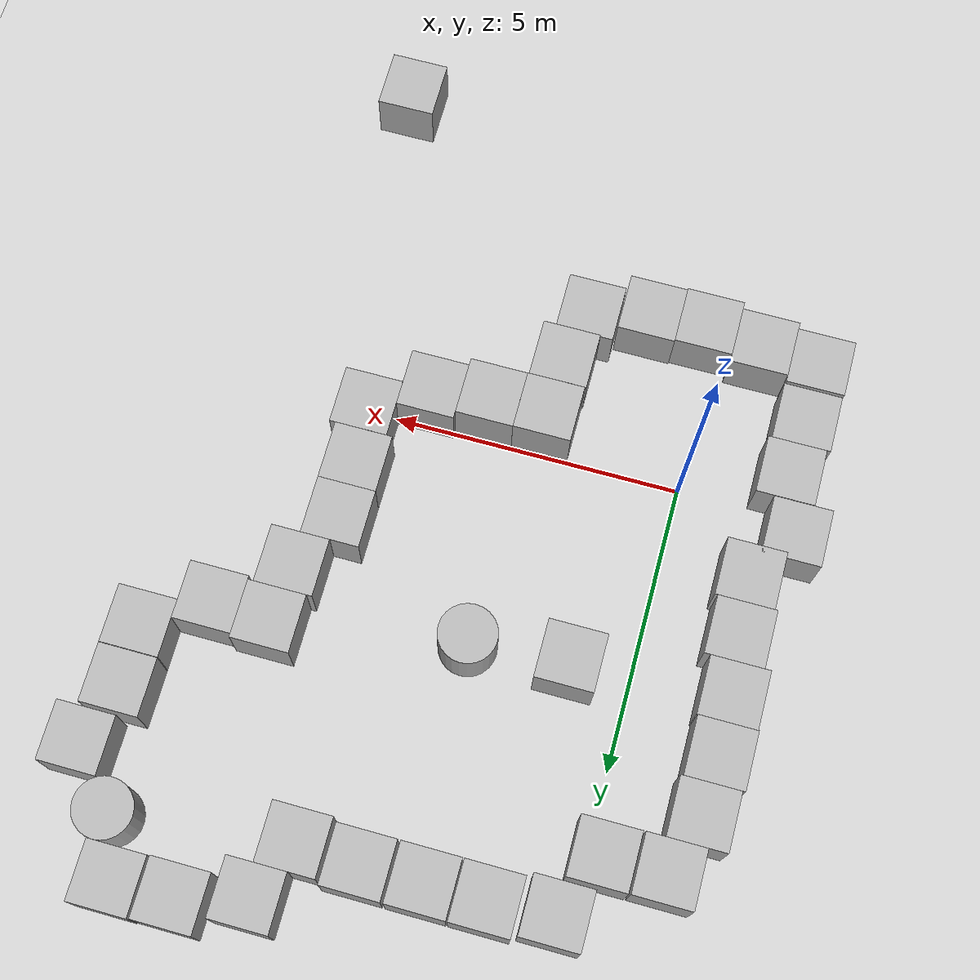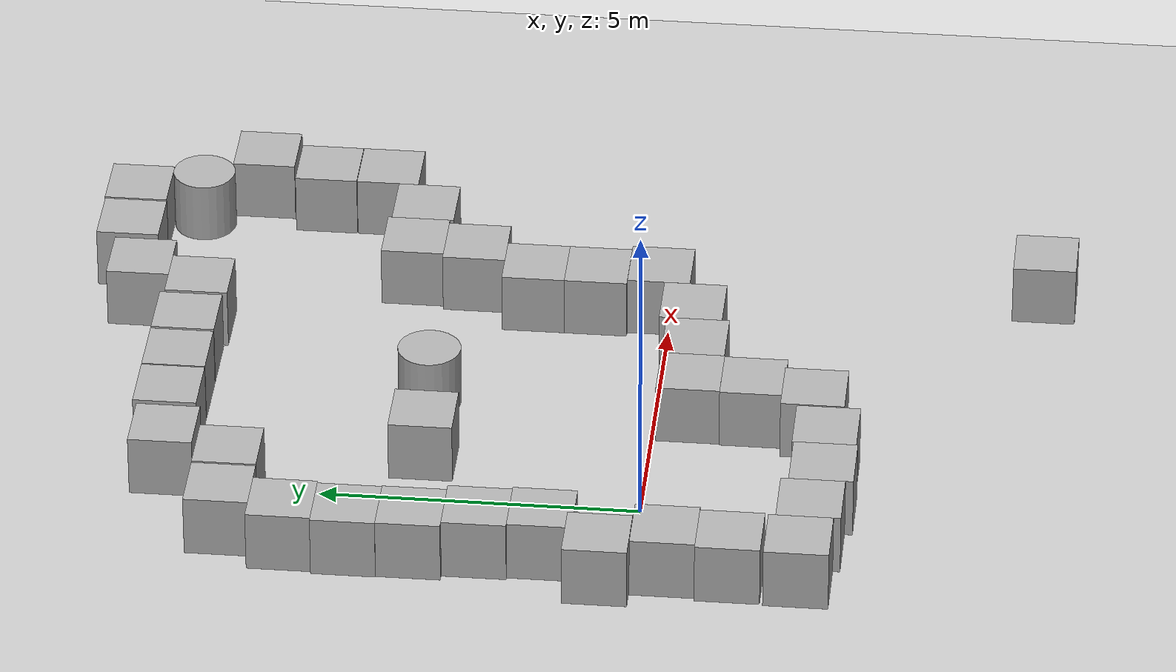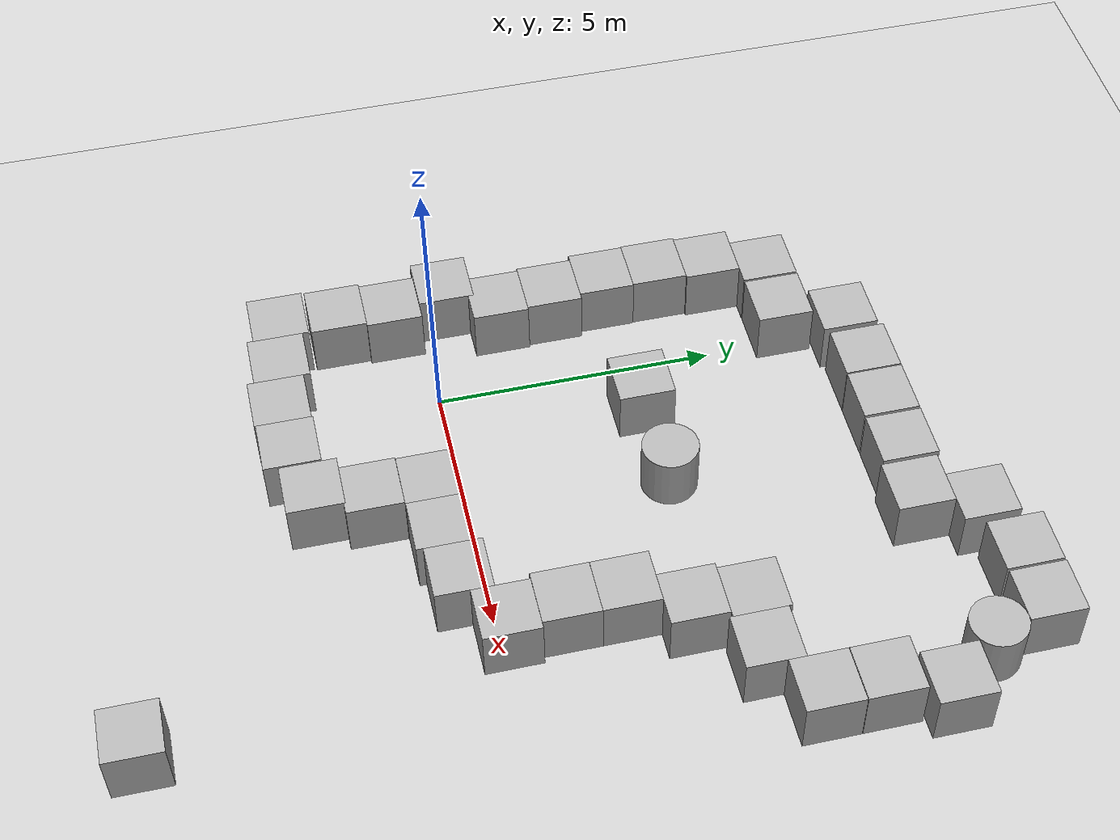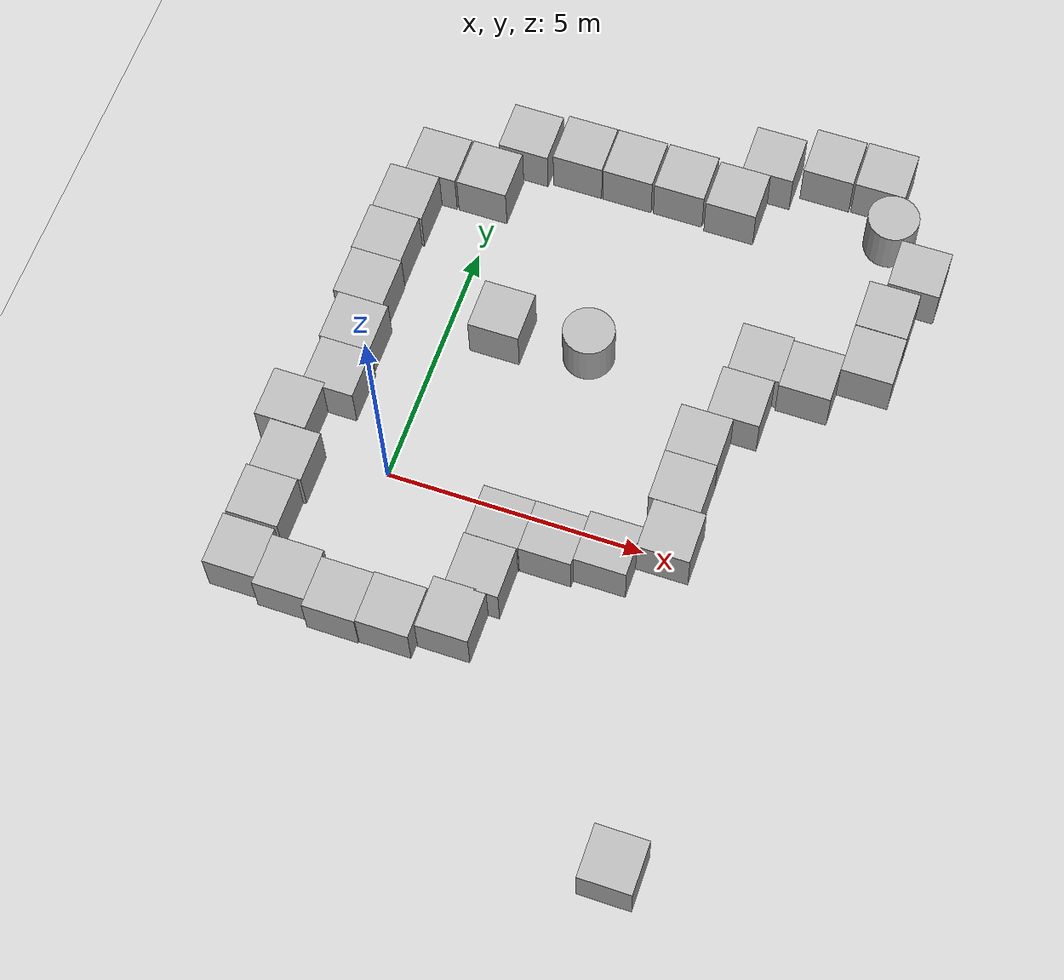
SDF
<sdf version='1.10'>
  <world name='empty'>
    <physics name='8ms' type='ode'>
      <max_step_size>0.0080000000000000002</max_step_size>
      <real_time_factor>1</real_time_factor>
      <real_time_update_rate>125</real_time_update_rate>
    </physics>
    <plugin name='gz::sim::systems::Physics' filename='gz-sim-physics-system'/>
    <plugin name='gz::sim::systems::UserCommands' filename='gz-sim-user-commands-system'/>
    <plugin name='gz::sim::systems::SceneBroadcaster' filename='gz-sim-scene-broadcaster-system'/>
    <plugin name='gz::sim::systems::Contact' filename='gz-sim-contact-system'/>
    <plugin name='gz::sim::systems::Sensors' filename='gz-sim-sensors-system'>
      <render_engine>ogre2</render_engine>
    </plugin>
    <plugin name='gz::sim::systems::Imu' filename='gz-sim-imu-system'/>
    <gravity>0 0 -9.8000000000000007</gravity>
    <magnetic_field>5.5644999999999998e-06 2.2875799999999999e-05 -4.2388400000000002e-05</magnetic_field>
    <atmosphere type='adiabatic'/>
    <scene>
      <ambient>0.400000006 0.400000006 0.400000006 1</ambient>
      <background>0.699999988 0.699999988 0.699999988 1</background>
      <shadows>true</shadows>
    </scene>
    <model name='ground_plane'>
      <static>true</static>
      <link name='link'>
        <collision name='collision'>
          <geometry>
            <plane>
              <normal>0 0 1</normal>
              <size>100 100</size>
            </plane>
          </geometry>
          <surface>
            <friction>
              <ode/>
            </friction>
            <bounce/>
            <contact/>
          </surface>
        </collision>
        <visual name='visual'>
          <geometry>
            <plane>
              <normal>0 0 1</normal>
              <size>100 100</size>
            </plane>
          </geometry>
          <material>
            <ambient>0.800000012 0.800000012 0.800000012 1</ambient>
            <diffuse>0.800000012 0.800000012 0.800000012 1</diffuse>
            <specular>0.800000012 0.800000012 0.800000012 1</specular>
          </material>
        </visual>
        <pose>0 0 0 0 0 0</pose>
        <inertial>
          <pose>0 0 0 0 0 0</pose>
          <mass>1</mass>
          <inertia>
            <ixx>1</ixx>
            <ixy>0</ixy>
            <ixz>0</ixz>
            <iyy>1</iyy>
            <iyz>0</iyz>
            <izz>1</izz>
          </inertia>
        </inertial>
        <enable_wind>false</enable_wind>
      </link>
      <pose>0 0 0 0 0 0</pose>
      <self_collide>false</self_collide>
    </model>
    <model name='box'>
      <pose>6.3773749437070606 -5.9406750922173917 0.49999996926033768 2.8665218322931826e-19 -5.1636786517095065e-20 -3.6289452764098855e-20</pose>
      <link name='box_link'>
        <inertial>
          <inertia>
            <ixx>0.16666</ixx>
            <ixy>0</ixy>
            <ixz>0</ixz>
            <iyy>0.16666</iyy>
            <iyz>0</iyz>
            <izz>0.16666</izz>
          </inertia>
          <mass>1</mass>
          <pose>0 0 0 0 0 0</pose>
        </inertial>
        <collision name='box_collision'>
          <geometry>
            <box>
              <size>1 1 1</size>
            </box>
          </geometry>
          <surface>
            <friction>
              <ode/>
            </friction>
            <bounce/>
            <contact/>
          </surface>
        </collision>
        <visual name='box_visual'>
          <geometry>
            <box>
              <size>1 1 1</size>
            </box>
          </geometry>
          <material>
            <ambient>0.300000012 0.300000012 0.300000012 1</ambient>
            <diffuse>0.699999988 0.699999988 0.699999988 1</diffuse>
            <specular>1 1 1 1</specular>
          </material>
        </visual>
        <pose>0 0 0 0 0 0</pose>
        <enable_wind>false</enable_wind>
      </link>
      <static>false</static>
      <self_collide>false</self_collide>
    </model>
    <model name='cylinder'>
      <pose>7.5005292656625748 7.7814179568781778 0.49999990219167934 2.5278244739576513e-07 3.7491130759547338e-10 -1.6894241753965159e-05</pose>
      <link name='cylinder_link'>
        <inertial>
          <inertia>
            <ixx>0.14580000000000001</ixx>
            <ixy>0</ixy>
            <ixz>0</ixz>
            <iyy>0.14580000000000001</iyy>
            <iyz>0</iyz>
            <izz>0.125</izz>
          </inertia>
          <mass>1</mass>
          <pose>0 0 0 0 0 0</pose>
        </inertial>
        <collision name='cylinder_collision'>
          <geometry>
            <cylinder>
              <radius>0.5</radius>
              <length>1</length>
            </cylinder>
          </geometry>
          <surface>
            <friction>
              <ode/>
            </friction>
            <bounce/>
            <contact/>
          </surface>
        </collision>
        <visual name='cylinder_visual'>
          <geometry>
            <cylinder>
              <radius>0.5</radius>
              <length>1</length>
            </cylinder>
          </geometry>
          <material>
            <ambient>0.300000012 0.300000012 0.300000012 1</ambient>
            <diffuse>0.699999988 0.699999988 0.699999988 1</diffuse>
            <specular>1 1 1 1</specular>
          </material>
        </visual>
        <pose>0 0 0 0 0 0</pose>
        <enable_wind>false</enable_wind>
      </link>
      <static>false</static>
      <self_collide>false</self_collide>
    </model>
    <model name='box_0'>
      <pose>1.0430474018532028 3.4817915682843621 0.49999997528531953 2.2913833041953367e-19 2.8784837707162187e-19 9.346766322121268e-22</pose>
      <link name='box_link'>
        <inertial>
          <inertia>
            <ixx>0.16666</ixx>
            <ixy>0</ixy>
            <ixz>0</ixz>
            <iyy>0.16666</iyy>
            <iyz>0</iyz>
            <izz>0.16666</izz>
          </inertia>
          <mass>1</mass>
          <pose>0 0 0 0 0 0</pose>
        </inertial>
        <collision name='box_collision'>
          <geometry>
            <box>
              <size>1 1 1</size>
            </box>
          </geometry>
          <surface>
            <friction>
              <ode/>
            </friction>
            <bounce/>
            <contact/>
          </surface>
        </collision>
        <visual name='box_visual'>
          <geometry>
            <box>
              <size>1 1 1</size>
            </box>
          </geometry>
          <material>
            <ambient>0.300000012 0.300000012 0.300000012 1</ambient>
            <diffuse>0.699999988 0.699999988 0.699999988 1</diffuse>
            <specular>1 1 1 1</specular>
          </material>
        </visual>
        <pose>0 0 0 0 0 0</pose>
        <enable_wind>false</enable_wind>
      </link>
      <static>false</static>
      <self_collide>false</self_collide>
    </model>
    <model name='cylinder_0'>
      <pose>2.7417203900830494 3.576889176520949 0.49999901795715013 1.6373759667242954e-17 2.7624969666176829e-17 -2.6216101068153678e-18</pose>
      <link name='cylinder_link'>
        <inertial>
          <inertia>
            <ixx>0.14580000000000001</ixx>
            <ixy>0</ixy>
            <ixz>0</ixz>
            <iyy>0.14580000000000001</iyy>
            <iyz>0</iyz>
            <izz>0.125</izz>
          </inertia>
          <mass>1</mass>
          <pose>0 0 0 0 0 0</pose>
        </inertial>
        <collision name='cylinder_collision'>
          <geometry>
            <cylinder>
              <radius>0.5</radius>
              <length>1</length>
            </cylinder>
          </geometry>
          <surface>
            <friction>
              <ode/>
            </friction>
            <bounce/>
            <contact/>
          </surface>
        </collision>
        <visual name='cylinder_visual'>
          <geometry>
            <cylinder>
              <radius>0.5</radius>
              <length>1</length>
            </cylinder>
          </geometry>
          <material>
            <ambient>0.300000012 0.300000012 0.300000012 1</ambient>
            <diffuse>0.699999988 0.699999988 0.699999988 1</diffuse>
            <specular>1 1 1 1</specular>
          </material>
        </visual>
        <pose>0 0 0 0 0 0</pose>
        <enable_wind>false</enable_wind>
      </link>
      <static>false</static>
      <self_collide>false</self_collide>
    </model>
    <model name='box_1'>
      <pose>4.4833926855953257 7.4484383812082928 0.49999937278003809 1.8572606510288822e-07 -9.5741442698591624e-13 -7.6370134980979074e-05</pose>
      <link name='box_link'>
        <inertial>
          <inertia>
            <ixx>0.16666</ixx>
            <ixy>0</ixy>
            <ixz>0</ixz>
            <iyy>0.16666</iyy>
            <iyz>0</iyz>
            <izz>0.16666</izz>
          </inertia>
          <mass>1</mass>
          <pose>0 0 0 0 0 0</pose>
        </inertial>
        <collision name='box_collision'>
          <geometry>
            <box>
              <size>1 1 1</size>
            </box>
          </geometry>
          <surface>
            <friction>
              <ode/>
            </friction>
            <bounce/>
            <contact/>
          </surface>
        </collision>
        <visual name='box_visual'>
          <geometry>
            <box>
              <size>1 1 1</size>
            </box>
          </geometry>
          <material>
            <ambient>0.300000012 0.300000012 0.300000012 1</ambient>
            <diffuse>0.699999988 0.699999988 0.699999988 1</diffuse>
            <specular>1 1 1 1</specular>
          </material>
        </visual>
        <pose>0 0 0 0 0 0</pose>
        <enable_wind>false</enable_wind>
      </link>
      <static>false</static>
      <self_collide>false</self_collide>
    </model>
    <model name='box_2'>
      <pose>3.4238177645888692 7.5168907660943542 0.49999998137115731 2.7336579265331904e-19 1.8921354330507597e-19 9.3646175939547248e-22</pose>
      <link name='box_link'>
        <inertial>
          <inertia>
            <ixx>0.16666</ixx>
            <ixy>0</ixy>
            <ixz>0</ixz>
            <iyy>0.16666</iyy>
            <iyz>0</iyz>
            <izz>0.16666</izz>
          </inertia>
          <mass>1</mass>
          <pose>0 0 0 0 0 0</pose>
        </inertial>
        <collision name='box_collision'>
          <geometry>
            <box>
              <size>1 1 1</size>
            </box>
          </geometry>
          <surface>
            <friction>
              <ode/>
            </friction>
            <bounce/>
            <contact/>
          </surface>
        </collision>
        <visual name='box_visual'>
          <geometry>
            <box>
              <size>1 1 1</size>
            </box>
          </geometry>
          <material>
            <ambient>0.300000012 0.300000012 0.300000012 1</ambient>
            <diffuse>0.699999988 0.699999988 0.699999988 1</diffuse>
            <specular>1 1 1 1</specular>
          </material>
        </visual>
        <pose>0 0 0 0 0 0</pose>
        <enable_wind>false</enable_wind>
      </link>
      <static>false</static>
      <self_collide>false</self_collide>
    </model>
    <model name='box_3'>
      <pose>2.3767502703831345 7.5180406976623519 0.49999998137115731 2.7336579265331904e-19 1.8921354330507597e-19 9.3646175939547248e-22</pose>
      <link name='box_link'>
        <inertial>
          <inertia>
            <ixx>0.16666</ixx>
            <ixy>0</ixy>
            <ixz>0</ixz>
            <iyy>0.16666</iyy>
            <iyz>0</iyz>
            <izz>0.16666</izz>
          </inertia>
          <mass>1</mass>
          <pose>0 0 0 0 0 0</pose>
        </inertial>
        <collision name='box_collision'>
          <geometry>
            <box>
              <size>1 1 1</size>
            </box>
          </geometry>
          <surface>
            <friction>
              <ode/>
            </friction>
            <bounce/>
            <contact/>
          </surface>
        </collision>
        <visual name='box_visual'>
          <geometry>
            <box>
              <size>1 1 1</size>
            </box>
          </geometry>
          <material>
            <ambient>0.300000012 0.300000012 0.300000012 1</ambient>
            <diffuse>0.699999988 0.699999988 0.699999988 1</diffuse>
            <specular>1 1 1 1</specular>
          </material>
        </visual>
        <pose>0 0 0 0 0 0</pose>
        <enable_wind>false</enable_wind>
      </link>
      <static>false</static>
      <self_collide>false</self_collide>
    </model>
    <model name='box_4'>
      <pose>1.3513132767212035 7.5187497214373344 0.49999998137115731 2.7336579265331904e-19 1.8921354330507597e-19 9.3646175939547248e-22</pose>
      <link name='box_link'>
        <inertial>
          <inertia>
            <ixx>0.16666</ixx>
            <ixy>0</ixy>
            <ixz>0</ixz>
            <iyy>0.16666</iyy>
            <iyz>0</iyz>
            <izz>0.16666</izz>
          </inertia>
          <mass>1</mass>
          <pose>0 0 0 0 0 0</pose>
        </inertial>
        <collision name='box_collision'>
          <geometry>
            <box>
              <size>1 1 1</size>
            </box>
          </geometry>
          <surface>
            <friction>
              <ode/>
            </friction>
            <bounce/>
            <contact/>
          </surface>
        </collision>
        <visual name='box_visual'>
          <geometry>
            <box>
              <size>1 1 1</size>
            </box>
          </geometry>
          <material>
            <ambient>0.300000012 0.300000012 0.300000012 1</ambient>
            <diffuse>0.699999988 0.699999988 0.699999988 1</diffuse>
            <specular>1 1 1 1</specular>
          </material>
        </visual>
        <pose>0 0 0 0 0 0</pose>
        <enable_wind>false</enable_wind>
      </link>
      <static>false</static>
      <self_collide>false</self_collide>
    </model>
    <model name='box_5'>
      <pose>0.2595693908451544 7.442628290390835 0.49999998137115731 2.7336579265331904e-19 1.8921354330507597e-19 9.3646175939547248e-22</pose>
      <link name='box_link'>
        <inertial>
          <inertia>
            <ixx>0.16666</ixx>
            <ixy>0</ixy>
            <ixz>0</ixz>
            <iyy>0.16666</iyy>
            <iyz>0</iyz>
            <izz>0.16666</izz>
          </inertia>
          <mass>1</mass>
          <pose>0 0 0 0 0 0</pose>
        </inertial>
        <collision name='box_collision'>
          <geometry>
            <box>
              <size>1 1 1</size>
            </box>
          </geometry>
          <surface>
            <friction>
              <ode/>
            </friction>
            <bounce/>
            <contact/>
          </surface>
        </collision>
        <visual name='box_visual'>
          <geometry>
            <box>
              <size>1 1 1</size>
            </box>
          </geometry>
          <material>
            <ambient>0.300000012 0.300000012 0.300000012 1</ambient>
            <diffuse>0.699999988 0.699999988 0.699999988 1</diffuse>
            <specular>1 1 1 1</specular>
          </material>
        </visual>
        <pose>0 0 0 0 0 0</pose>
        <enable_wind>false</enable_wind>
      </link>
      <static>false</static>
      <self_collide>false</self_collide>
    </model>
    <model name='box_6'>
      <pose>-0.22659054454594241 6.3769606004100545 0.49999998137115731 2.7336579265331904e-19 1.8921354330507597e-19 9.3646175939547248e-22</pose>
      <link name='box_link'>
        <inertial>
          <inertia>
            <ixx>0.16666</ixx>
            <ixy>0</ixy>
            <ixz>0</ixz>
            <iyy>0.16666</iyy>
            <iyz>0</iyz>
            <izz>0.16666</izz>
          </inertia>
          <mass>1</mass>
          <pose>0 0 0 0 0 0</pose>
        </inertial>
        <collision name='box_collision'>
          <geometry>
            <box>
              <size>1 1 1</size>
            </box>
          </geometry>
          <surface>
            <friction>
              <ode/>
            </friction>
            <bounce/>
            <contact/>
          </surface>
        </collision>
        <visual name='box_visual'>
          <geometry>
            <box>
              <size>1 1 1</size>
            </box>
          </geometry>
          <material>
            <ambient>0.300000012 0.300000012 0.300000012 1</ambient>
            <diffuse>0.699999988 0.699999988 0.699999988 1</diffuse>
            <specular>1 1 1 1</specular>
          </material>
        </visual>
        <pose>0 0 0 0 0 0</pose>
        <enable_wind>false</enable_wind>
      </link>
      <static>false</static>
      <self_collide>false</self_collide>
    </model>
    <model name='box_7'>
      <pose>-1.2637693627617159 6.3733455751440351 0.49999937279728751 -2.1518937535131832e-07 -4.3858936904578097e-11 1.779973294999159e-05</pose>
      <link name='box_link'>
        <inertial>
          <inertia>
            <ixx>0.16666</ixx>
            <ixy>0</ixy>
            <ixz>0</ixz>
            <iyy>0.16666</iyy>
            <iyz>0</iyz>
            <izz>0.16666</izz>
          </inertia>
          <mass>1</mass>
          <pose>0 0 0 0 0 0</pose>
        </inertial>
        <collision name='box_collision'>
          <geometry>
            <box>
              <size>1 1 1</size>
            </box>
          </geometry>
          <surface>
            <friction>
              <ode/>
            </friction>
            <bounce/>
            <contact/>
          </surface>
        </collision>
        <visual name='box_visual'>
          <geometry>
            <box>
              <size>1 1 1</size>
            </box>
          </geometry>
          <material>
            <ambient>0.300000012 0.300000012 0.300000012 1</ambient>
            <diffuse>0.699999988 0.699999988 0.699999988 1</diffuse>
            <specular>1 1 1 1</specular>
          </material>
        </visual>
        <pose>0 0 0 0 0 0</pose>
        <enable_wind>false</enable_wind>
      </link>
      <static>false</static>
      <self_collide>false</self_collide>
    </model>
    <model name='box_8'>
      <pose>-1.581335850228339 5.3733342423249617 0.49999937278536494 -1.8272280092104608e-07 -2.3293887573020073e-11 2.882887889608092e-05</pose>
      <link name='box_link'>
        <inertial>
          <inertia>
            <ixx>0.16666</ixx>
            <ixy>0</ixy>
            <ixz>0</ixz>
            <iyy>0.16666</iyy>
            <iyz>0</iyz>
            <izz>0.16666</izz>
          </inertia>
          <mass>1</mass>
          <pose>0 0 0 0 0 0</pose>
        </inertial>
        <collision name='box_collision'>
          <geometry>
            <box>
              <size>1 1 1</size>
            </box>
          </geometry>
          <surface>
            <friction>
              <ode/>
            </friction>
            <bounce/>
            <contact/>
          </surface>
        </collision>
        <visual name='box_visual'>
          <geometry>
            <box>
              <size>1 1 1</size>
            </box>
          </geometry>
          <material>
            <ambient>0.300000012 0.300000012 0.300000012 1</ambient>
            <diffuse>0.699999988 0.699999988 0.699999988 1</diffuse>
            <specular>1 1 1 1</specular>
          </material>
        </visual>
        <pose>0 0 0 0 0 0</pose>
        <enable_wind>false</enable_wind>
      </link>
      <static>false</static>
      <self_collide>false</self_collide>
    </model>
    <model name='box_9'>
      <pose>-1.6281585538445364 4.3733322112827722 0.49999937273038703 -1.3381233710799989e-07 9.2431203518653903e-11 3.2586835964982394e-05</pose>
      <link name='box_link'>
        <inertial>
          <inertia>
            <ixx>0.16666</ixx>
            <ixy>0</ixy>
            <ixz>0</ixz>
            <iyy>0.16666</iyy>
            <iyz>0</iyz>
            <izz>0.16666</izz>
          </inertia>
          <mass>1</mass>
          <pose>0 0 0 0 0 0</pose>
        </inertial>
        <collision name='box_collision'>
          <geometry>
            <box>
              <size>1 1 1</size>
            </box>
          </geometry>
          <surface>
            <friction>
              <ode/>
            </friction>
            <bounce/>
            <contact/>
          </surface>
        </collision>
        <visual name='box_visual'>
          <geometry>
            <box>
              <size>1 1 1</size>
            </box>
          </geometry>
          <material>
            <ambient>0.300000012 0.300000012 0.300000012 1</ambient>
            <diffuse>0.699999988 0.699999988 0.699999988 1</diffuse>
            <specular>1 1 1 1</specular>
          </material>
        </visual>
        <pose>0 0 0 0 0 0</pose>
        <enable_wind>false</enable_wind>
      </link>
      <static>false</static>
      <self_collide>false</self_collide>
    </model>
    <model name='box_10'>
      <pose>-1.6122754045928223 3.3733318750467598 0.49999937278305051 -1.0254461767118475e-07 9.7009441382297796e-11 3.5687525636992251e-05</pose>
      <link name='box_link'>
        <inertial>
          <inertia>
            <ixx>0.16666</ixx>
            <ixy>0</ixy>
            <ixz>0</ixz>
            <iyy>0.16666</iyy>
            <iyz>0</iyz>
            <izz>0.16666</izz>
          </inertia>
          <mass>1</mass>
          <pose>0 0 0 0 0 0</pose>
        </inertial>
        <collision name='box_collision'>
          <geometry>
            <box>
              <size>1 1 1</size>
            </box>
          </geometry>
          <surface>
            <friction>
              <ode/>
            </friction>
            <bounce/>
            <contact/>
          </surface>
        </collision>
        <visual name='box_visual'>
          <geometry>
            <box>
              <size>1 1 1</size>
            </box>
          </geometry>
          <material>
            <ambient>0.300000012 0.300000012 0.300000012 1</ambient>
            <diffuse>0.699999988 0.699999988 0.699999988 1</diffuse>
            <specular>1 1 1 1</specular>
          </material>
        </visual>
        <pose>0 0 0 0 0 0</pose>
        <enable_wind>false</enable_wind>
      </link>
      <static>false</static>
      <self_collide>false</self_collide>
    </model>
    <model name='box_11'>
      <pose>-1.5047529750453783 2.3733303133598733 0.49999937278130746 -3.1347026649870656e-07 -1.7490406412583848e-11 5.4585471311020275e-05</pose>
      <link name='box_link'>
        <inertial>
          <inertia>
            <ixx>0.16666</ixx>
            <ixy>0</ixy>
            <ixz>0</ixz>
            <iyy>0.16666</iyy>
            <iyz>0</iyz>
            <izz>0.16666</izz>
          </inertia>
          <mass>1</mass>
          <pose>0 0 0 0 0 0</pose>
        </inertial>
        <collision name='box_collision'>
          <geometry>
            <box>
              <size>1 1 1</size>
            </box>
          </geometry>
          <surface>
            <friction>
              <ode/>
            </friction>
            <bounce/>
            <contact/>
          </surface>
        </collision>
        <visual name='box_visual'>
          <geometry>
            <box>
              <size>1 1 1</size>
            </box>
          </geometry>
          <material>
            <ambient>0.300000012 0.300000012 0.300000012 1</ambient>
            <diffuse>0.699999988 0.699999988 0.699999988 1</diffuse>
            <specular>1 1 1 1</specular>
          </material>
        </visual>
        <pose>0 0 0 0 0 0</pose>
        <enable_wind>false</enable_wind>
      </link>
      <static>false</static>
      <self_collide>false</self_collide>
    </model>
    <model name='box_12'>
      <pose>-1.4574565727493658 1.3733338473249042 0.49999937279274631 -3.2013860664636198e-07 5.9374708597867071e-11 5.4150938705318095e-05</pose>
      <link name='box_link'>
        <inertial>
          <inertia>
            <ixx>0.16666</ixx>
            <ixy>0</ixy>
            <ixz>0</ixz>
            <iyy>0.16666</iyy>
            <iyz>0</iyz>
            <izz>0.16666</izz>
          </inertia>
          <mass>1</mass>
          <pose>0 0 0 0 0 0</pose>
        </inertial>
        <collision name='box_collision'>
          <geometry>
            <box>
              <size>1 1 1</size>
            </box>
          </geometry>
          <surface>
            <friction>
              <ode/>
            </friction>
            <bounce/>
            <contact/>
          </surface>
        </collision>
        <visual name='box_visual'>
          <geometry>
            <box>
              <size>1 1 1</size>
            </box>
          </geometry>
          <material>
            <ambient>0.300000012 0.300000012 0.300000012 1</ambient>
            <diffuse>0.699999988 0.699999988 0.699999988 1</diffuse>
            <specular>1 1 1 1</specular>
          </material>
        </visual>
        <pose>0 0 0 0 0 0</pose>
        <enable_wind>false</enable_wind>
      </link>
      <static>false</static>
      <self_collide>false</self_collide>
    </model>
    <model name='box_16'>
      <pose>2.4583882926030403 -0.56432178909055009 0.49999937278072243 -4.6422205507455976e-07 1.2433715624791574e-11 -0.00063314917677342549</pose>
      <link name='box_link'>
        <inertial>
          <inertia>
            <ixx>0.16666</ixx>
            <ixy>0</ixy>
            <ixz>0</ixz>
            <iyy>0.16666</iyy>
            <iyz>0</iyz>
            <izz>0.16666</izz>
          </inertia>
          <mass>1</mass>
          <pose>0 0 0 0 0 0</pose>
        </inertial>
        <collision name='box_collision'>
          <geometry>
            <box>
              <size>1 1 1</size>
            </box>
          </geometry>
          <surface>
            <friction>
              <ode/>
            </friction>
            <bounce/>
            <contact/>
          </surface>
        </collision>
        <visual name='box_visual'>
          <geometry>
            <box>
              <size>1 1 1</size>
            </box>
          </geometry>
          <material>
            <ambient>0.300000012 0.300000012 0.300000012 1</ambient>
            <diffuse>0.699999988 0.699999988 0.699999988 1</diffuse>
            <specular>1 1 1 1</specular>
          </material>
        </visual>
        <pose>0 0 0 0 0 0</pose>
        <enable_wind>false</enable_wind>
      </link>
      <static>false</static>
      <self_collide>false</self_collide>
    </model>
    <model name='box_17'>
      <pose>2.4346558204192181 -1.5646151003489042 0.49999937279325085 -7.9024574376133893e-07 -2.4054004852652264e-10 -1.5556210354493212e-05</pose>
      <link name='box_link'>
        <inertial>
          <inertia>
            <ixx>0.16666</ixx>
            <ixy>0</ixy>
            <ixz>0</ixz>
            <iyy>0.16666</iyy>
            <iyz>0</iyz>
            <izz>0.16666</izz>
          </inertia>
          <mass>1</mass>
          <pose>0 0 0 0 0 0</pose>
        </inertial>
        <collision name='box_collision'>
          <geometry>
            <box>
              <size>1 1 1</size>
            </box>
          </geometry>
          <surface>
            <friction>
              <ode/>
            </friction>
            <bounce/>
            <contact/>
          </surface>
        </collision>
        <visual name='box_visual'>
          <geometry>
            <box>
              <size>1 1 1</size>
            </box>
          </geometry>
          <material>
            <ambient>0.300000012 0.300000012 0.300000012 1</ambient>
            <diffuse>0.699999988 0.699999988 0.699999988 1</diffuse>
            <specular>1 1 1 1</specular>
          </material>
        </visual>
        <pose>0 0 0 0 0 0</pose>
        <enable_wind>false</enable_wind>
      </link>
      <static>false</static>
      <self_collide>false</self_collide>
    </model>
    <model name='box_18'>
      <pose>3.4584071613260234 -0.55835185309196944 0.49999926617261747 1.8806652140274243e-07 2.0625397351942946e-08 -0.00061842783937755212</pose>
      <link name='box_link'>
        <inertial>
          <inertia>
            <ixx>0.16666</ixx>
            <ixy>0</ixy>
            <ixz>0</ixz>
            <iyy>0.16666</iyy>
            <iyz>0</iyz>
            <izz>0.16666</izz>
          </inertia>
          <mass>1</mass>
          <pose>0 0 0 0 0 0</pose>
        </inertial>
        <collision name='box_collision'>
          <geometry>
            <box>
              <size>1 1 1</size>
            </box>
          </geometry>
          <surface>
            <friction>
              <ode/>
            </friction>
            <bounce/>
            <contact/>
          </surface>
        </collision>
        <visual name='box_visual'>
          <geometry>
            <box>
              <size>1 1 1</size>
            </box>
          </geometry>
          <material>
            <ambient>0.300000012 0.300000012 0.300000012 1</ambient>
            <diffuse>0.699999988 0.699999988 0.699999988 1</diffuse>
            <specular>1 1 1 1</specular>
          </material>
        </visual>
        <pose>0 0 0 0 0 0</pose>
        <enable_wind>false</enable_wind>
      </link>
      <static>false</static>
      <self_collide>false</self_collide>
    </model>
    <model name='box_19'>
      <pose>4.4584810671809576 -0.43850636262933429 0.49999937278649986 7.0821722730626248e-10 2.1406670089034805e-07 -0.00061711267461140738</pose>
      <link name='box_link'>
        <inertial>
          <inertia>
            <ixx>0.16666</ixx>
            <ixy>0</ixy>
            <ixz>0</ixz>
            <iyy>0.16666</iyy>
            <iyz>0</iyz>
            <izz>0.16666</izz>
          </inertia>
          <mass>1</mass>
          <pose>0 0 0 0 0 0</pose>
        </inertial>
        <collision name='box_collision'>
          <geometry>
            <box>
              <size>1 1 1</size>
            </box>
          </geometry>
          <surface>
            <friction>
              <ode/>
            </friction>
            <bounce/>
            <contact/>
          </surface>
        </collision>
        <visual name='box_visual'>
          <geometry>
            <box>
              <size>1 1 1</size>
            </box>
          </geometry>
          <material>
            <ambient>0.300000012 0.300000012 0.300000012 1</ambient>
            <diffuse>0.699999988 0.699999988 0.699999988 1</diffuse>
            <specular>1 1 1 1</specular>
          </material>
        </visual>
        <pose>0 0 0 0 0 0</pose>
        <enable_wind>false</enable_wind>
      </link>
      <static>false</static>
      <self_collide>false</self_collide>
    </model>
    <model name='box_20'>
      <pose>5.4586866732931538 0.15672926036838888 0.4999993727843477 -7.469861791828078e-12 9.0463406384688256e-08 0.0010862576177920523</pose>
      <link name='box_link'>
        <inertial>
          <inertia>
            <ixx>0.16666</ixx>
            <ixy>0</ixy>
            <ixz>0</ixz>
            <iyy>0.16666</iyy>
            <iyz>0</iyz>
            <izz>0.16666</izz>
          </inertia>
          <mass>1</mass>
          <pose>0 0 0 0 0 0</pose>
        </inertial>
        <collision name='box_collision'>
          <geometry>
            <box>
              <size>1 1 1</size>
            </box>
          </geometry>
          <surface>
            <friction>
              <ode/>
            </friction>
            <bounce/>
            <contact/>
          </surface>
        </collision>
        <visual name='box_visual'>
          <geometry>
            <box>
              <size>1 1 1</size>
            </box>
          </geometry>
          <material>
            <ambient>0.300000012 0.300000012 0.300000012 1</ambient>
            <diffuse>0.699999988 0.699999988 0.699999988 1</diffuse>
            <specular>1 1 1 1</specular>
          </material>
        </visual>
        <pose>0 0 0 0 0 0</pose>
        <enable_wind>false</enable_wind>
      </link>
      <static>false</static>
      <self_collide>false</self_collide>
    </model>
    <model name='box_21'>
      <pose>5.3542530343164838 1.157237657339792 0.49999937278647982 2.7859188153738333e-07 -2.0913753726984519e-11 -1.6203892975828275e-05</pose>
      <link name='box_link'>
        <inertial>
          <inertia>
            <ixx>0.16666</ixx>
            <ixy>0</ixy>
            <ixz>0</ixz>
            <iyy>0.16666</iyy>
            <iyz>0</iyz>
            <izz>0.16666</izz>
          </inertia>
          <mass>1</mass>
          <pose>0 0 0 0 0 0</pose>
        </inertial>
        <collision name='box_collision'>
          <geometry>
            <box>
              <size>1 1 1</size>
            </box>
          </geometry>
          <surface>
            <friction>
              <ode/>
            </friction>
            <bounce/>
            <contact/>
          </surface>
        </collision>
        <visual name='box_visual'>
          <geometry>
            <box>
              <size>1 1 1</size>
            </box>
          </geometry>
          <material>
            <ambient>0.300000012 0.300000012 0.300000012 1</ambient>
            <diffuse>0.699999988 0.699999988 0.699999988 1</diffuse>
            <specular>1 1 1 1</specular>
          </material>
        </visual>
        <pose>0 0 0 0 0 0</pose>
        <enable_wind>false</enable_wind>
      </link>
      <static>false</static>
      <self_collide>false</self_collide>
    </model>
    <model name='box_22'>
      <pose>5.3542487337822688 2.1572612547110506 0.49999937278259404 7.5985781147736458e-08 2.4658122918861911e-12 -6.5236731223297146e-05</pose>
      <link name='box_link'>
        <inertial>
          <inertia>
            <ixx>0.16666</ixx>
            <ixy>0</ixy>
            <ixz>0</ixz>
            <iyy>0.16666</iyy>
            <iyz>0</iyz>
            <izz>0.16666</izz>
          </inertia>
          <mass>1</mass>
          <pose>0 0 0 0 0 0</pose>
        </inertial>
        <collision name='box_collision'>
          <geometry>
            <box>
              <size>1 1 1</size>
            </box>
          </geometry>
          <surface>
            <friction>
              <ode/>
            </friction>
            <bounce/>
            <contact/>
          </surface>
        </collision>
        <visual name='box_visual'>
          <geometry>
            <box>
              <size>1 1 1</size>
            </box>
          </geometry>
          <material>
            <ambient>0.300000012 0.300000012 0.300000012 1</ambient>
            <diffuse>0.699999988 0.699999988 0.699999988 1</diffuse>
            <specular>1 1 1 1</specular>
          </material>
        </visual>
        <pose>0 0 0 0 0 0</pose>
        <enable_wind>false</enable_wind>
      </link>
      <static>false</static>
      <self_collide>false</self_collide>
    </model>
    <model name='box_23'>
      <pose>5.8477682892430609 3.1572285387125105 0.49999937276437828 6.9346880390657464e-09 -3.6450518738014048e-11 -6.7553629218215124e-05</pose>
      <link name='box_link'>
        <inertial>
          <inertia>
            <ixx>0.16666</ixx>
            <ixy>0</ixy>
            <ixz>0</ixz>
            <iyy>0.16666</iyy>
            <iyz>0</iyz>
            <izz>0.16666</izz>
          </inertia>
          <mass>1</mass>
          <pose>0 0 0 0 0 0</pose>
        </inertial>
        <collision name='box_collision'>
          <geometry>
            <box>
              <size>1 1 1</size>
            </box>
          </geometry>
          <surface>
            <friction>
              <ode/>
            </friction>
            <bounce/>
            <contact/>
          </surface>
        </collision>
        <visual name='box_visual'>
          <geometry>
            <box>
              <size>1 1 1</size>
            </box>
          </geometry>
          <material>
            <ambient>0.300000012 0.300000012 0.300000012 1</ambient>
            <diffuse>0.699999988 0.699999988 0.699999988 1</diffuse>
            <specular>1 1 1 1</specular>
          </material>
        </visual>
        <pose>0 0 0 0 0 0</pose>
        <enable_wind>false</enable_wind>
      </link>
      <static>false</static>
      <self_collide>false</self_collide>
    </model>
    <model name='box_24'>
      <pose>5.9393114568744556 4.1572220770255592 0.49999937278396916 -3.044246436178671e-07 -9.9847308523431805e-08 -6.6492435146914188e-05</pose>
      <link name='box_link'>
        <inertial>
          <inertia>
            <ixx>0.16666</ixx>
            <ixy>0</ixy>
            <ixz>0</ixz>
            <iyy>0.16666</iyy>
            <iyz>0</iyz>
            <izz>0.16666</izz>
          </inertia>
          <mass>1</mass>
          <pose>0 0 0 0 0 0</pose>
        </inertial>
        <collision name='box_collision'>
          <geometry>
            <box>
              <size>1 1 1</size>
            </box>
          </geometry>
          <surface>
            <friction>
              <ode/>
            </friction>
            <bounce/>
            <contact/>
          </surface>
        </collision>
        <visual name='box_visual'>
          <geometry>
            <box>
              <size>1 1 1</size>
            </box>
          </geometry>
          <material>
            <ambient>0.300000012 0.300000012 0.300000012 1</ambient>
            <diffuse>0.699999988 0.699999988 0.699999988 1</diffuse>
            <specular>1 1 1 1</specular>
          </material>
        </visual>
        <pose>0 0 0 0 0 0</pose>
        <enable_wind>false</enable_wind>
      </link>
      <static>false</static>
      <self_collide>false</self_collide>
    </model>
    <model name='box_25'>
      <pose>6.9393398327693889 4.0972639373302515 0.49999937290470176 -1.2015794447817186e-09 3.2955665315899253e-08 6.040297019966931e-07</pose>
      <link name='box_link'>
        <inertial>
          <inertia>
            <ixx>0.16666</ixx>
            <ixy>0</ixy>
            <ixz>0</ixz>
            <iyy>0.16666</iyy>
            <iyz>0</iyz>
            <izz>0.16666</izz>
          </inertia>
          <mass>1</mass>
          <pose>0 0 0 0 0 0</pose>
        </inertial>
        <collision name='box_collision'>
          <geometry>
            <box>
              <size>1 1 1</size>
            </box>
          </geometry>
          <surface>
            <friction>
              <ode/>
            </friction>
            <bounce/>
            <contact/>
          </surface>
        </collision>
        <visual name='box_visual'>
          <geometry>
            <box>
              <size>1 1 1</size>
            </box>
          </geometry>
          <material>
            <ambient>0.300000012 0.300000012 0.300000012 1</ambient>
            <diffuse>0.699999988 0.699999988 0.699999988 1</diffuse>
            <specular>1 1 1 1</specular>
          </material>
        </visual>
        <pose>0 0 0 0 0 0</pose>
        <enable_wind>false</enable_wind>
      </link>
      <static>false</static>
      <self_collide>false</self_collide>
    </model>
    <model name='box_26'>
      <pose>7.9393394334893177 4.7814671087589922 0.49999937278307682 2.4243982113037286e-12 7.049935704221231e-08 4.8568359048628501e-06</pose>
      <link name='box_link'>
        <inertial>
          <inertia>
            <ixx>0.16666</ixx>
            <ixy>0</ixy>
            <ixz>0</ixz>
            <iyy>0.16666</iyy>
            <iyz>0</iyz>
            <izz>0.16666</izz>
          </inertia>
          <mass>1</mass>
          <pose>0 0 0 0 0 0</pose>
        </inertial>
        <collision name='box_collision'>
          <geometry>
            <box>
              <size>1 1 1</size>
            </box>
          </geometry>
          <surface>
            <friction>
              <ode/>
            </friction>
            <bounce/>
            <contact/>
          </surface>
        </collision>
        <visual name='box_visual'>
          <geometry>
            <box>
              <size>1 1 1</size>
            </box>
          </geometry>
          <material>
            <ambient>0.300000012 0.300000012 0.300000012 1</ambient>
            <diffuse>0.699999988 0.699999988 0.699999988 1</diffuse>
            <specular>1 1 1 1</specular>
          </material>
        </visual>
        <pose>0 0 0 0 0 0</pose>
        <enable_wind>false</enable_wind>
      </link>
      <static>false</static>
      <self_collide>false</self_collide>
    </model>
    <model name='box_27'>
      <pose>7.9393285705485237 5.7896685138616677 0.49999998137115731 2.7336579265331904e-19 1.8921354330507597e-19 9.3646175939547248e-22</pose>
      <link name='box_link'>
        <inertial>
          <inertia>
            <ixx>0.16666</ixx>
            <ixy>0</ixy>
            <ixz>0</ixz>
            <iyy>0.16666</iyy>
            <iyz>0</iyz>
            <izz>0.16666</izz>
          </inertia>
          <mass>1</mass>
          <pose>0 0 0 0 0 0</pose>
        </inertial>
        <collision name='box_collision'>
          <geometry>
            <box>
              <size>1 1 1</size>
            </box>
          </geometry>
          <surface>
            <friction>
              <ode/>
            </friction>
            <bounce/>
            <contact/>
          </surface>
        </collision>
        <visual name='box_visual'>
          <geometry>
            <box>
              <size>1 1 1</size>
            </box>
          </geometry>
          <material>
            <ambient>0.300000012 0.300000012 0.300000012 1</ambient>
            <diffuse>0.699999988 0.699999988 0.699999988 1</diffuse>
            <specular>1 1 1 1</specular>
          </material>
        </visual>
        <pose>0 0 0 0 0 0</pose>
        <enable_wind>false</enable_wind>
      </link>
      <static>false</static>
      <self_collide>false</self_collide>
    </model>
    <model name='box_28'>
      <pose>8.2762839734385061 6.845733507810543 0.49999998137115731 2.7336579265331904e-19 1.8921354330507597e-19 9.3646175939547248e-22</pose>
      <link name='box_link'>
        <inertial>
          <inertia>
            <ixx>0.16666</ixx>
            <ixy>0</ixy>
            <ixz>0</ixz>
            <iyy>0.16666</iyy>
            <iyz>0</iyz>
            <izz>0.16666</izz>
          </inertia>
          <mass>1</mass>
          <pose>0 0 0 0 0 0</pose>
        </inertial>
        <collision name='box_collision'>
          <geometry>
            <box>
              <size>1 1 1</size>
            </box>
          </geometry>
          <surface>
            <friction>
              <ode/>
            </friction>
            <bounce/>
            <contact/>
          </surface>
        </collision>
        <visual name='box_visual'>
          <geometry>
            <box>
              <size>1 1 1</size>
            </box>
          </geometry>
          <material>
            <ambient>0.300000012 0.300000012 0.300000012 1</ambient>
            <diffuse>0.699999988 0.699999988 0.699999988 1</diffuse>
            <specular>1 1 1 1</specular>
          </material>
        </visual>
        <pose>0 0 0 0 0 0</pose>
        <enable_wind>false</enable_wind>
      </link>
      <static>false</static>
      <self_collide>false</self_collide>
    </model>
    <model name='box_29'>
      <pose>7.0959561474270156 8.7814067228471338 0.49999937278127837 -5.9044067370484773e-10 -4.4989328319990118e-13 2.7885805267253474e-05</pose>
      <link name='box_link'>
        <inertial>
          <inertia>
            <ixx>0.16666</ixx>
            <ixy>0</ixy>
            <ixz>0</ixz>
            <iyy>0.16666</iyy>
            <iyz>0</iyz>
            <izz>0.16666</izz>
          </inertia>
          <mass>1</mass>
          <pose>0 0 0 0 0 0</pose>
        </inertial>
        <collision name='box_collision'>
          <geometry>
            <box>
              <size>1 1 1</size>
            </box>
          </geometry>
          <surface>
            <friction>
              <ode/>
            </friction>
            <bounce/>
            <contact/>
          </surface>
        </collision>
        <visual name='box_visual'>
          <geometry>
            <box>
              <size>1 1 1</size>
            </box>
          </geometry>
          <material>
            <ambient>0.300000012 0.300000012 0.300000012 1</ambient>
            <diffuse>0.699999988 0.699999988 0.699999988 1</diffuse>
            <specular>1 1 1 1</specular>
          </material>
        </visual>
        <pose>0 0 0 0 0 0</pose>
        <enable_wind>false</enable_wind>
      </link>
      <static>false</static>
      <self_collide>false</self_collide>
    </model>
    <model name='box_30'>
      <pose>6.0573104185923299 8.768793948681699 0.49999998137115731 2.7336579265331904e-19 1.8921354330507597e-19 9.3646175939547248e-22</pose>
      <link name='box_link'>
        <inertial>
          <inertia>
            <ixx>0.16666</ixx>
            <ixy>0</ixy>
            <ixz>0</ixz>
            <iyy>0.16666</iyy>
            <iyz>0</iyz>
            <izz>0.16666</izz>
          </inertia>
          <mass>1</mass>
          <pose>0 0 0 0 0 0</pose>
        </inertial>
        <collision name='box_collision'>
          <geometry>
            <box>
              <size>1 1 1</size>
            </box>
          </geometry>
          <surface>
            <friction>
              <ode/>
            </friction>
            <bounce/>
            <contact/>
          </surface>
        </collision>
        <visual name='box_visual'>
          <geometry>
            <box>
              <size>1 1 1</size>
            </box>
          </geometry>
          <material>
            <ambient>0.300000012 0.300000012 0.300000012 1</ambient>
            <diffuse>0.699999988 0.699999988 0.699999988 1</diffuse>
            <specular>1 1 1 1</specular>
          </material>
        </visual>
        <pose>0 0 0 0 0 0</pose>
        <enable_wind>false</enable_wind>
      </link>
      <static>false</static>
      <self_collide>false</self_collide>
    </model>
    <model name='box_31'>
      <pose>4.9291509138393561 8.4484040745626618 0.49999937278162532 -6.5401009737125113e-08 1.0840822949886511e-12 -7.6446840243367484e-05</pose>
      <link name='box_link'>
        <inertial>
          <inertia>
            <ixx>0.16666</ixx>
            <ixy>0</ixy>
            <ixz>0</ixz>
            <iyy>0.16666</iyy>
            <iyz>0</iyz>
            <izz>0.16666</izz>
          </inertia>
          <mass>1</mass>
          <pose>0 0 0 0 0 0</pose>
        </inertial>
        <collision name='box_collision'>
          <geometry>
            <box>
              <size>1 1 1</size>
            </box>
          </geometry>
          <surface>
            <friction>
              <ode/>
            </friction>
            <bounce/>
            <contact/>
          </surface>
        </collision>
        <visual name='box_visual'>
          <geometry>
            <box>
              <size>1 1 1</size>
            </box>
          </geometry>
          <material>
            <ambient>0.300000012 0.300000012 0.300000012 1</ambient>
            <diffuse>0.699999988 0.699999988 0.699999988 1</diffuse>
            <specular>1 1 1 1</specular>
          </material>
        </visual>
        <pose>0 0 0 0 0 0</pose>
        <enable_wind>false</enable_wind>
      </link>
      <static>false</static>
      <self_collide>false</self_collide>
    </model>
    <model name='box_14'>
      <pose>2.2146060255056845 -2.5348097054400527 0.49999937276916551 1.2544212921891706e-06 -3.4466295385634896e-11 -2.6459513725133087e-05</pose>
      <link name='box_link'>
        <inertial>
          <inertia>
            <ixx>0.16666</ixx>
            <ixy>0</ixy>
            <ixz>0</ixz>
            <iyy>0.16666</iyy>
            <iyz>0</iyz>
            <izz>0.16666</izz>
          </inertia>
          <mass>1</mass>
          <pose>0 0 0 0 0 0</pose>
        </inertial>
        <collision name='box_collision'>
          <geometry>
            <box>
              <size>1 1 1</size>
            </box>
          </geometry>
          <surface>
            <friction>
              <ode/>
            </friction>
            <bounce/>
            <contact/>
          </surface>
        </collision>
        <visual name='box_visual'>
          <geometry>
            <box>
              <size>1 1 1</size>
            </box>
          </geometry>
          <material>
            <ambient>0.300000012 0.300000012 0.300000012 1</ambient>
            <diffuse>0.699999988 0.699999988 0.699999988 1</diffuse>
            <specular>1 1 1 1</specular>
          </material>
        </visual>
        <pose>0 0 0 0 0 0</pose>
        <enable_wind>false</enable_wind>
      </link>
      <static>false</static>
      <self_collide>false</self_collide>
    </model>
    <model name='box_15'>
      <pose>1.1873651625140889 -2.7914085728022289 0.49999937279156348 6.1213962880880067e-11 1.0773127737053412e-06 -1.3499677957708857e-05</pose>
      <link name='box_link'>
        <inertial>
          <inertia>
            <ixx>0.16666</ixx>
            <ixy>0</ixy>
            <ixz>0</ixz>
            <iyy>0.16666</iyy>
            <iyz>0</iyz>
            <izz>0.16666</izz>
          </inertia>
          <mass>1</mass>
          <pose>0 0 0 0 0 0</pose>
        </inertial>
        <collision name='box_collision'>
          <geometry>
            <box>
              <size>1 1 1</size>
            </box>
          </geometry>
          <surface>
            <friction>
              <ode/>
            </friction>
            <bounce/>
            <contact/>
          </surface>
        </collision>
        <visual name='box_visual'>
          <geometry>
            <box>
              <size>1 1 1</size>
            </box>
          </geometry>
          <material>
            <ambient>0.300000012 0.300000012 0.300000012 1</ambient>
            <diffuse>0.699999988 0.699999988 0.699999988 1</diffuse>
            <specular>1 1 1 1</specular>
          </material>
        </visual>
        <pose>0 0 0 0 0 0</pose>
        <enable_wind>false</enable_wind>
      </link>
      <static>false</static>
      <self_collide>false</self_collide>
    </model>
    <model name='box_32'>
      <pose>-1.7228736981918285 -0.53325398272229718 0.49999937203902661 -2.0031319995949249e-08 2.5406626636226686e-09 -8.1077442547133782e-05</pose>
      <link name='box_link'>
        <inertial>
          <inertia>
            <ixx>0.16666</ixx>
            <ixy>0</ixy>
            <ixz>0</ixz>
            <iyy>0.16666</iyy>
            <iyz>0</iyz>
            <izz>0.16666</izz>
          </inertia>
          <mass>1</mass>
          <pose>0 0 0 0 0 0</pose>
        </inertial>
        <collision name='box_collision'>
          <geometry>
            <box>
              <size>1 1 1</size>
            </box>
          </geometry>
          <surface>
            <friction>
              <ode/>
            </friction>
            <bounce/>
            <contact/>
          </surface>
        </collision>
        <visual name='box_visual'>
          <geometry>
            <box>
              <size>1 1 1</size>
            </box>
          </geometry>
          <material>
            <ambient>0.300000012 0.300000012 0.300000012 1</ambient>
            <diffuse>0.699999988 0.699999988 0.699999988 1</diffuse>
            <specular>1 1 1 1</specular>
          </material>
        </visual>
        <pose>0 0 0 0 0 0</pose>
        <enable_wind>false</enable_wind>
      </link>
      <static>false</static>
      <self_collide>false</self_collide>
    </model>
    <model name='box_33'>
      <pose>-1.7836607298080835 -1.5332488836235523 0.49999937279056816 1.2544786418983173e-06 -1.7382721547561082e-10 -7.9925700671303521e-05</pose>
      <link name='box_link'>
        <inertial>
          <inertia>
            <ixx>0.16666</ixx>
            <ixy>0</ixy>
            <ixz>0</ixz>
            <iyy>0.16666</iyy>
            <iyz>0</iyz>
            <izz>0.16666</izz>
          </inertia>
          <mass>1</mass>
          <pose>0 0 0 0 0 0</pose>
        </inertial>
        <collision name='box_collision'>
          <geometry>
            <box>
              <size>1 1 1</size>
            </box>
          </geometry>
          <surface>
            <friction>
              <ode/>
            </friction>
            <bounce/>
            <contact/>
          </surface>
        </collision>
        <visual name='box_visual'>
          <geometry>
            <box>
              <size>1 1 1</size>
            </box>
          </geometry>
          <material>
            <ambient>0.300000012 0.300000012 0.300000012 1</ambient>
            <diffuse>0.699999988 0.699999988 0.699999988 1</diffuse>
            <specular>1 1 1 1</specular>
          </material>
        </visual>
        <pose>0 0 0 0 0 0</pose>
        <enable_wind>false</enable_wind>
      </link>
      <static>false</static>
      <self_collide>false</self_collide>
    </model>
    <model name='box_34'>
      <pose>-1.8077865128785242 -2.5819664992473101 0.49999937278505019 -4.5446188693821144e-11 -1.2365563740560339e-06 -1.5456369327889285e-05</pose>
      <link name='box_link'>
        <inertial>
          <inertia>
            <ixx>0.16666</ixx>
            <ixy>0</ixy>
            <ixz>0</ixz>
            <iyy>0.16666</iyy>
            <iyz>0</iyz>
            <izz>0.16666</izz>
          </inertia>
          <mass>1</mass>
          <pose>0 0 0 0 0 0</pose>
        </inertial>
        <collision name='box_collision'>
          <geometry>
            <box>
              <size>1 1 1</size>
            </box>
          </geometry>
          <surface>
            <friction>
              <ode/>
            </friction>
            <bounce/>
            <contact/>
          </surface>
        </collision>
        <visual name='box_visual'>
          <geometry>
            <box>
              <size>1 1 1</size>
            </box>
          </geometry>
          <material>
            <ambient>0.300000012 0.300000012 0.300000012 1</ambient>
            <diffuse>0.699999988 0.699999988 0.699999988 1</diffuse>
            <specular>1 1 1 1</specular>
          </material>
        </visual>
        <pose>0 0 0 0 0 0</pose>
        <enable_wind>false</enable_wind>
      </link>
      <static>false</static>
      <self_collide>false</self_collide>
    </model>
    <model name='box_35'>
      <pose>0.18736627847128362 -2.8153960114181111 0.49999937273429779 -3.2609253365824928e-12 7.2696943312701573e-07 -1.4690231297267694e-05</pose>
      <link name='box_link'>
        <inertial>
          <inertia>
            <ixx>0.16666</ixx>
            <ixy>0</ixy>
            <ixz>0</ixz>
            <iyy>0.16666</iyy>
            <iyz>0</iyz>
            <izz>0.16666</izz>
          </inertia>
          <mass>1</mass>
          <pose>0 0 0 0 0 0</pose>
        </inertial>
        <collision name='box_collision'>
          <geometry>
            <box>
              <size>1 1 1</size>
            </box>
          </geometry>
          <surface>
            <friction>
              <ode/>
            </friction>
            <bounce/>
            <contact/>
          </surface>
        </collision>
        <visual name='box_visual'>
          <geometry>
            <box>
              <size>1 1 1</size>
            </box>
          </geometry>
          <material>
            <ambient>0.300000012 0.300000012 0.300000012 1</ambient>
            <diffuse>0.699999988 0.699999988 0.699999988 1</diffuse>
            <specular>1 1 1 1</specular>
          </material>
        </visual>
        <pose>0 0 0 0 0 0</pose>
        <enable_wind>false</enable_wind>
      </link>
      <static>false</static>
      <self_collide>false</self_collide>
    </model>
    <model name='box_36'>
      <pose>-0.81262794764476576 -2.6937535432540685 0.49999937280551909 -1.0001821347322888e-10 -5.7354628444270989e-07 -1.6163863929860205e-05</pose>
      <link name='box_link'>
        <inertial>
          <inertia>
            <ixx>0.16666</ixx>
            <ixy>0</ixy>
            <ixz>0</ixz>
            <iyy>0.16666</iyy>
            <iyz>0</iyz>
            <izz>0.16666</izz>
          </inertia>
          <mass>1</mass>
          <pose>0 0 0 0 0 0</pose>
        </inertial>
        <collision name='box_collision'>
          <geometry>
            <box>
              <size>1 1 1</size>
            </box>
          </geometry>
          <surface>
            <friction>
              <ode/>
            </friction>
            <bounce/>
            <contact/>
          </surface>
        </collision>
        <visual name='box_visual'>
          <geometry>
            <box>
              <size>1 1 1</size>
            </box>
          </geometry>
          <material>
            <ambient>0.300000012 0.300000012 0.300000012 1</ambient>
            <diffuse>0.699999988 0.699999988 0.699999988 1</diffuse>
            <specular>1 1 1 1</specular>
          </material>
        </visual>
        <pose>0 0 0 0 0 0</pose>
        <enable_wind>false</enable_wind>
      </link>
      <static>false</static>
      <self_collide>false</self_collide>
    </model>
    <model name='box_13'>
      <pose>-2.038648214924851 0.47401904237275122 0.49999937279278178 1.2528085219072686e-06 -6.6348043355654857e-11 -1.2035241062001834e-05</pose>
      <link name='box_link'>
        <inertial>
          <inertia>
            <ixx>0.16666</ixx>
            <ixy>0</ixy>
            <ixz>0</ixz>
            <iyy>0.16666</iyy>
            <iyz>0</iyz>
            <izz>0.16666</izz>
          </inertia>
          <mass>1</mass>
          <pose>0 0 0 0 0 0</pose>
        </inertial>
        <collision name='box_collision'>
          <geometry>
            <box>
              <size>1 1 1</size>
            </box>
          </geometry>
          <surface>
            <friction>
              <ode/>
            </friction>
            <bounce/>
            <contact/>
          </surface>
        </collision>
        <visual name='box_visual'>
          <geometry>
            <box>
              <size>1 1 1</size>
            </box>
          </geometry>
          <material>
            <ambient>0.300000012 0.300000012 0.300000012 1</ambient>
            <diffuse>0.699999988 0.699999988 0.699999988 1</diffuse>
            <specular>1 1 1 1</specular>
          </material>
        </visual>
        <pose>0 0 0 0 0 0</pose>
        <enable_wind>false</enable_wind>
      </link>
      <static>false</static>
      <self_collide>false</self_collide>
    </model>
    <light name='sun' type='directional'>
      <pose>0 0 10 0 0 0</pose>
      <cast_shadows>true</cast_shadows>
      <intensity>1</intensity>
      <direction>-0.5 0.10000000000000001 -0.90000000000000002</direction>
      <diffuse>0.800000012 0.800000012 0.800000012 1</diffuse>
      <specular>0.200000003 0.200000003 0.200000003 1</specular>
      <attenuation>
        <range>1000</range>
        <linear>0.01</linear>
        <constant>0.90000000000000002</constant>
        <quadratic>0.001</quadratic>
      </attenuation>
      <spot>
        <inner_angle>0</inner_angle>
        <outer_angle>0</outer_angle>
        <falloff>0</falloff>
      </spot>
    </light>
  </world>
</sdf>
